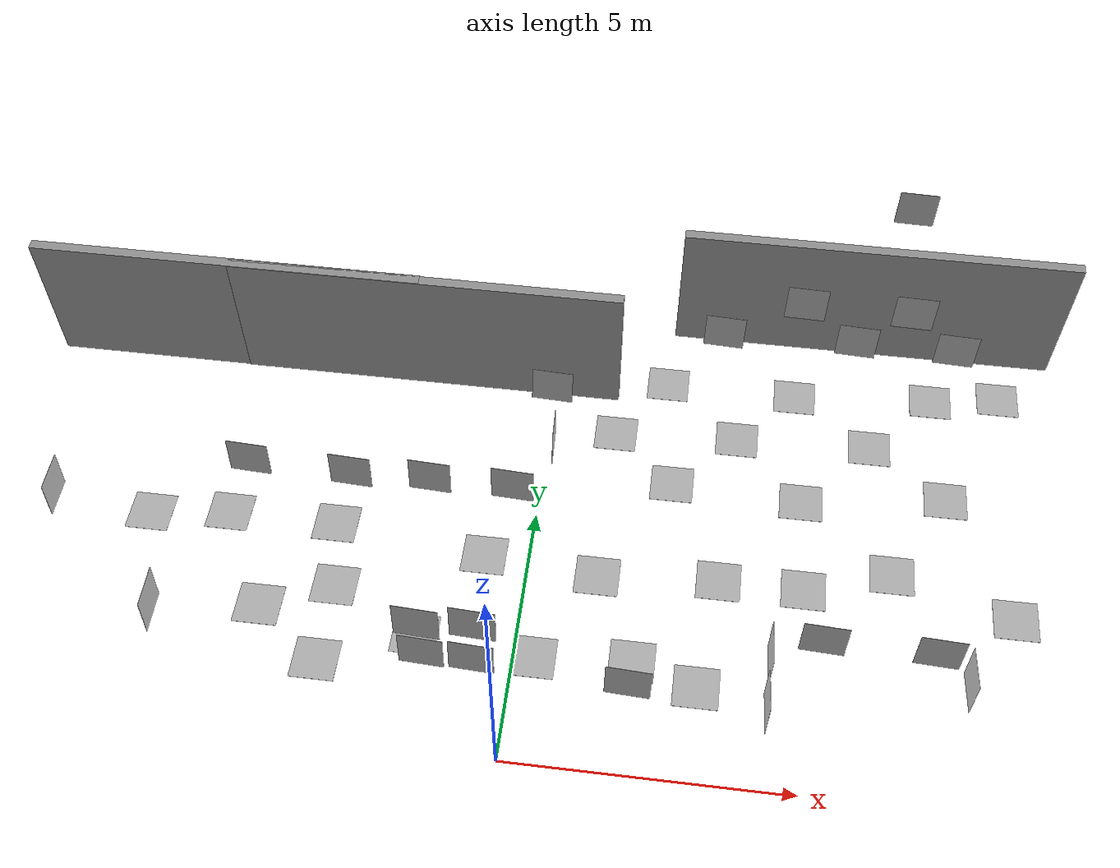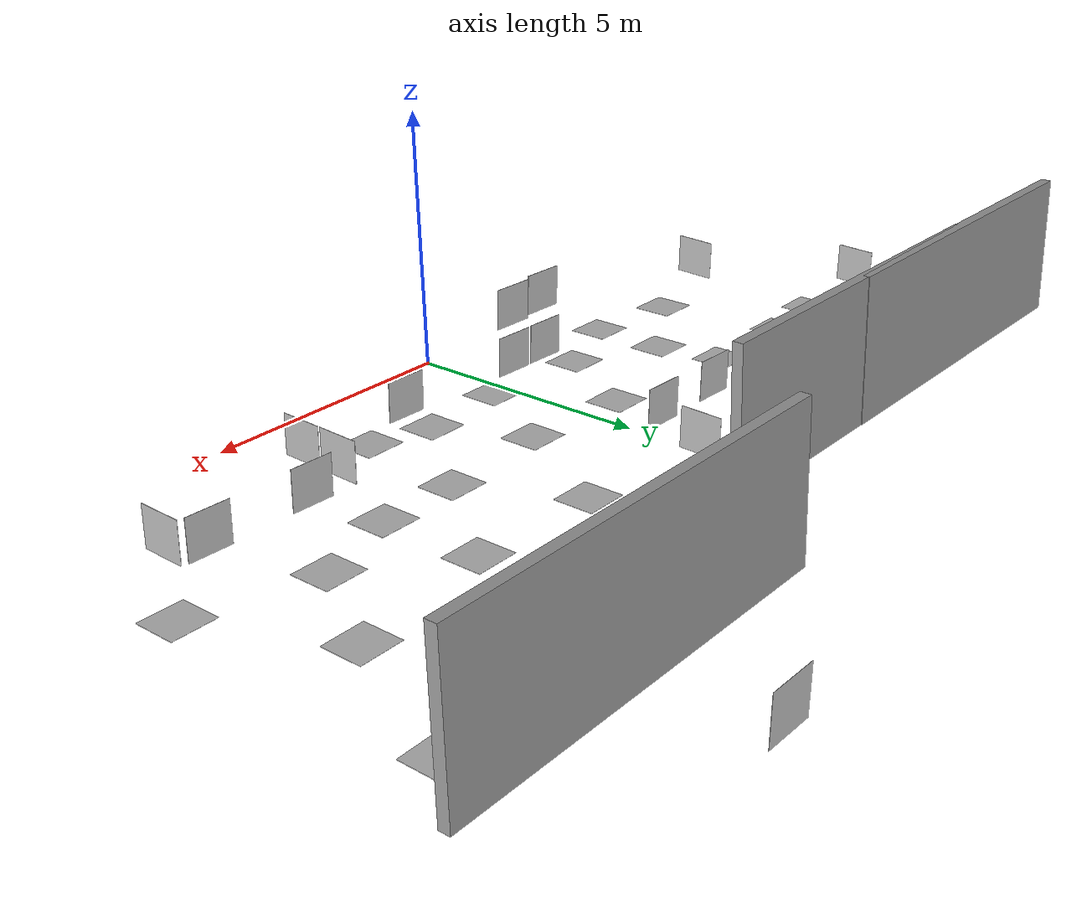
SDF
<sdf version="1.6">
 <world name="factory">
  <model name="grey_wall">
   <static>1</static>
   <link name="link">
    <pose>0 0 1.4 0 -0 0</pose>
    <collision name="collision"><geometry><box><size>7.5 0.2 2.8</size></box></geometry></collision>
    <visual name="visual">
     <cast_shadows>0</cast_shadows>
     <geometry><box><size>7.5 0.2 2.8</size></box></geometry>
     <material>
      <script>
       <uri>model://grey_wall/materials/scripts</uri>
       <uri>model://grey_wall/materials/textures</uri>
       <name>vrc/grey_wall</name>
      </script>
     </material>
    </visual>
   </link>
   <pose>-6.34942 8.1136 0 0 -0 0</pose>
  </model>
  <model name="grey_wall_clone">
   <static>1</static>
   <link name="link">
    <pose>0 0 1.4 0 -0 0</pose>
    <collision name="collision"><geometry><box><size>7.5 0.2 2.8</size></box></geometry></collision>
    <visual name="visual">
     <cast_shadows>0</cast_shadows>
     <geometry><box><size>7.5 0.2 2.8</size></box></geometry>
     <material>
      <script>
       <uri>model://grey_wall/materials/scripts</uri>
       <uri>model://grey_wall/materials/textures</uri>
       <name>vrc/grey_wall</name>
      </script>
     </material>
    </visual>
   </link>
   <pose>-2.50623 8.09985 0 0 -0 0</pose>
  </model>
  <model name="grey_wall_clone_3">
   <static>1</static>
   <link name="link">
    <pose>0 0 1.4 0 -0 0</pose>
    <collision name="collision"><geometry><box><size>7.5 0.2 2.8</size></box></geometry></collision>
    <visual name="visual">
     <cast_shadows>0</cast_shadows>
     <geometry><box><size>7.5 0.2 2.8</size></box></geometry>
     <material>
      <script>
       <uri>model://grey_wall/materials/scripts</uri>
       <uri>model://grey_wall/materials/textures</uri>
       <name>vrc/grey_wall</name>
      </script>
     </material>
    </visual>
   </link>
   <pose>5.99617 9.95603 0 0 -0 0</pose>
  </model>
  <model name="kalibr_tag_clone_clone_clone_clone_clone">
   <static>1</static>
   <link name="link">
    <inertial>
     <mass>0.1</mass>
     <inertia>
      <ixx>0.000166667</ixx>
      <iyy>0.000166667</iyy>
      <izz>0.000166667</izz>
      <ixy>0</ixy>
      <ixz>0</ixz>
      <iyz>0</iyz>
     </inertia>
    </inertial>
    <collision name="collision"><geometry><box><size>0.8 0.8 0.005</size></box></geometry></collision>
    <visual name="visual">
     <geometry><box><size>0.8 0.8 0.005</size></box></geometry>
     <material>
      <script>
       <uri>model://kalibr_tag/materials/scripts</uri>
       <uri>model://kalibr_tag/materials/textures</uri>
       <name>Kalibr_tag/Diffuse</name>
      </script>
     </material>
    </visual>
   </link>
   <pose>-9.00998 4.29013 0.427439 1.58264 0.057467 1.61346</pose>
  </model>
  <model name="kalibr_tag_clone_clone_clone_clone_clone_clone">
   <static>1</static>
   <link name="link">
    <inertial>
     <mass>0.1</mass>
     <inertia>
      <ixx>0.000166667</ixx>
      <iyy>0.000166667</iyy>
      <izz>0.000166667</izz>
      <ixy>0</ixy>
      <ixz>0</ixz>
      <iyz>0</iyz>
     </inertia>
    </inertial>
    <collision name="collision"><geometry><box><size>0.8 0.8 0.005</size></box></geometry></collision>
    <visual name="visual">
     <geometry><box><size>0.8 0.8 0.005</size></box></geometry>
     <material>
      <script>
       <uri>model://kalibr_tag/materials/scripts</uri>
       <uri>model://kalibr_tag/materials/textures</uri>
       <name>Kalibr_tag/Diffuse</name>
      </script>
     </material>
    </visual>
   </link>
   <pose>2.03923 1.50633 0.418062 1.62908 -0.00671 3.09537</pose>
  </model>
  <model name="kalibr_tag_clone_clone_clone_clone_clone_clone_clone">
   <static>1</static>
   <link name="link">
    <inertial>
     <mass>0.1</mass>
     <inertia>
      <ixx>0.000166667</ixx>
      <iyy>0.000166667</iyy>
      <izz>0.000166667</izz>
      <ixy>0</ixy>
      <ixz>0</ixz>
      <iyz>0</iyz>
     </inertia>
    </inertial>
    <collision name="collision"><geometry><box><size>0.8 0.8 0.005</size></box></geometry></collision>
    <visual name="visual">
     <geometry><box><size>0.8 0.8 0.005</size></box></geometry>
     <material>
      <script>
       <uri>model://kalibr_tag/materials/scripts</uri>
       <uri>model://kalibr_tag/materials/textures</uri>
       <name>Kalibr_tag/Diffuse</name>
      </script>
     </material>
    </visual>
   </link>
   <pose>3.2359 9.70204 0.424998 1.62908 -0.00671 3.09537</pose>
  </model>
  <model name="kalibr_tag_clone_clone_clone_clone_clone_clone_clone_clone">
   <static>1</static>
   <link name="link">
    <inertial>
     <mass>0.1</mass>
     <inertia>
      <ixx>0.000166667</ixx>
      <iyy>0.000166667</iyy>
      <izz>0.000166667</izz>
      <ixy>0</ixy>
      <ixz>0</ixz>
      <iyz>0</iyz>
     </inertia>
    </inertial>
    <collision name="collision"><geometry><box><size>0.8 0.8 0.005</size></box></geometry></collision>
    <visual name="visual">
     <geometry><box><size>0.8 0.8 0.005</size></box></geometry>
     <material>
      <script>
       <uri>model://kalibr_tag/materials/scripts</uri>
       <uri>model://kalibr_tag/materials/textures</uri>
       <name>Kalibr_tag/Diffuse</name>
      </script>
     </material>
    </visual>
   </link>
   <pose>7.87476 9.77394 0.424998 1.62908 -0.00671 3.09537</pose>
  </model>
  <model name="kalibr_tag_clone_0_clone_clone">
   <static>1</static>
   <link name="link">
    <inertial>
     <mass>0.1</mass>
     <inertia>
      <ixx>0.000166667</ixx>
      <iyy>0.000166667</iyy>
      <izz>0.000166667</izz>
      <ixy>0</ixy>
      <ixz>0</ixz>
      <iyz>0</iyz>
     </inertia>
    </inertial>
    <collision name="collision"><geometry><box><size>0.8 0.8 0.005</size></box></geometry></collision>
    <visual name="visual">
     <geometry><box><size>0.8 0.8 0.005</size></box></geometry>
     <material>
      <script>
       <uri>model://kalibr_tag/materials/scripts</uri>
       <uri>model://kalibr_tag/materials/textures</uri>
       <name>Kalibr_tag/Diffuse</name>
      </script>
     </material>
    </visual>
   </link>
   <pose>6.59426 4.51864 -0.000701 0 -0 0</pose>
  </model>
  <model name="kalibr_tag_clone_0_clone_clone_clone_2">
   <static>1</static>
   <link name="link">
    <inertial>
     <mass>0.1</mass>
     <inertia>
      <ixx>0.000166667</ixx>
      <iyy>0.000166667</iyy>
      <izz>0.000166667</izz>
      <ixy>0</ixy>
      <ixz>0</ixz>
      <iyz>0</iyz>
     </inertia>
    </inertial>
    <collision name="collision"><geometry><box><size>0.8 0.8 0.005</size></box></geometry></collision>
    <visual name="visual">
     <geometry><box><size>0.8 0.8 0.005</size></box></geometry>
     <material>
      <script>
       <uri>model://kalibr_tag/materials/scripts</uri>
       <uri>model://kalibr_tag/materials/textures</uri>
       <name>Kalibr_tag/Diffuse</name>
      </script>
     </material>
    </visual>
   </link>
   <pose>1.28417 7.15397 -0.000701 0 -0 0</pose>
  </model>
  <model name="kalibr_tag_clone_clone_clone_clone_clone_clone_clone_0">
   <static>1</static>
   <link name="link">
    <inertial>
     <mass>0.1</mass>
     <inertia>
      <ixx>0.000166667</ixx>
      <iyy>0.000166667</iyy>
      <izz>0.000166667</izz>
      <ixy>0</ixy>
      <ixz>0</ixz>
      <iyz>0</iyz>
     </inertia>
    </inertial>
    <collision name="collision"><geometry><box><size>0.8 0.8 0.005</size></box></geometry></collision>
    <visual name="visual">
     <geometry><box><size>0.8 0.8 0.005</size></box></geometry>
     <material>
      <script>
       <uri>model://kalibr_tag/materials/scripts</uri>
       <uri>model://kalibr_tag/materials/textures</uri>
       <name>Kalibr_tag/Diffuse</name>
      </script>
     </material>
    </visual>
   </link>
   <pose>-0.628071 1.72193 1.4248 1.62908 -0.00671 3.09537</pose>
  </model>
  <model name="kalibr_tag_clone_0_clone_clone_clone_7">
   <static>1</static>
   <link name="link">
    <inertial>
     <mass>0.1</mass>
     <inertia>
      <ixx>0.000166667</ixx>
      <iyy>0.000166667</iyy>
      <izz>0.000166667</izz>
      <ixy>0</ixy>
      <ixz>0</ixz>
      <iyz>0</iyz>
     </inertia>
    </inertial>
    <collision name="collision"><geometry><box><size>0.8 0.8 0.005</size></box></geometry></collision>
    <visual name="visual">
     <geometry><box><size>0.8 0.8 0.005</size></box></geometry>
     <material>
      <script>
       <uri>model://kalibr_tag/materials/scripts</uri>
       <uri>model://kalibr_tag/materials/textures</uri>
       <name>Kalibr_tag/Diffuse</name>
      </script>
     </material>
    </visual>
   </link>
   <pose>-0.833082 4.03149 -0.000701 0 -0 0</pose>
  </model>
  <model name="kalibr_tag_clone_clone_clone_clone_clone_0">
   <static>1</static>
   <link name="link">
    <inertial>
     <mass>0.1</mass>
     <inertia>
      <ixx>0.000166667</ixx>
      <iyy>0.000166667</iyy>
      <izz>0.000166667</izz>
      <ixy>0</ixy>
      <ixz>0</ixz>
      <iyz>0</iyz>
     </inertia>
    </inertial>
    <collision name="collision"><geometry><box><size>0.8 0.8 0.005</size></box></geometry></collision>
    <visual name="visual">
     <geometry><box><size>0.8 0.8 0.005</size></box></geometry>
     <material>
      <script>
       <uri>model://kalibr_tag/materials/scripts</uri>
       <uri>model://kalibr_tag/materials/textures</uri>
       <name>Kalibr_tag/Diffuse</name>
      </script>
     </material>
    </visual>
   </link>
   <pose>-6.34134 1.84828 0.855534 1.58264 0.057467 1.61346</pose>
  </model>
  <model name="kalibr_tag_clone_clone_clone_clone_clone_clone_clone_0_clone">
   <static>1</static>
   <link name="link">
    <inertial>
     <mass>0.1</mass>
     <inertia>
      <ixx>0.000166667</ixx>
      <iyy>0.000166667</iyy>
      <izz>0.000166667</izz>
      <ixy>0</ixy>
      <ixz>0</ixz>
      <iyz>0</iyz>
     </inertia>
    </inertial>
    <collision name="collision"><geometry><box><size>0.8 0.8 0.005</size></box></geometry></collision>
    <visual name="visual">
     <geometry><box><size>0.8 0.8 0.005</size></box></geometry>
     <material>
      <script>
       <uri>model://kalibr_tag/materials/scripts</uri>
       <uri>model://kalibr_tag/materials/textures</uri>
       <name>Kalibr_tag/Diffuse</name>
      </script>
     </material>
    </visual>
   </link>
   <pose>-3.57906 5.31317 0.418062 1.62908 -0.00671 3.09537</pose>
  </model>
  <model name="kalibr_tag_clone_0_clone_clone_clone_7_clone">
   <static>1</static>
   <link name="link">
    <inertial>
     <mass>0.1</mass>
     <inertia>
      <ixx>0.000166667</ixx>
      <iyy>0.000166667</iyy>
      <izz>0.000166667</izz>
      <ixy>0</ixy>
      <ixz>0</ixz>
      <iyz>0</iyz>
     </inertia>
    </inertial>
    <collision name="collision"><geometry><box><size>0.8 0.8 0.005</size></box></geometry></collision>
    <visual name="visual">
     <geometry><box><size>0.8 0.8 0.005</size></box></geometry>
     <material>
      <script>
       <uri>model://kalibr_tag/materials/scripts</uri>
       <uri>model://kalibr_tag/materials/textures</uri>
       <name>Kalibr_tag/Diffuse</name>
      </script>
     </material>
    </visual>
   </link>
   <pose>-5.71943 4.39891 -0.000701 0 -0 0</pose>
  </model>
  <model name="kalibr_tag_clone_0_clone_clone_clone_9">
   <static>1</static>
   <link name="link">
    <inertial>
     <mass>0.1</mass>
     <inertia>
      <ixx>0.000166667</ixx>
      <iyy>0.000166667</iyy>
      <izz>0.000166667</izz>
      <ixy>0</ixy>
      <ixz>0</ixz>
      <iyz>0</iyz>
     </inertia>
    </inertial>
    <collision name="collision"><geometry><box><size>0.8 0.8 0.005</size></box></geometry></collision>
    <visual name="visual">
     <geometry><box><size>0.8 0.8 0.005</size></box></geometry>
     <material>
      <script>
       <uri>model://kalibr_tag/materials/scripts</uri>
       <uri>model://kalibr_tag/materials/textures</uri>
       <name>Kalibr_tag/Diffuse</name>
      </script>
     </material>
    </visual>
   </link>
   <pose>6.19182 7.40111 -0.000701 0 -0 0</pose>
  </model>
  <model name="kalibr_tag_clone_0_clone_clone_clone_10">
   <static>1</static>
   <link name="link">
    <inertial>
     <mass>0.1</mass>
     <inertia>
      <ixx>0.000166667</ixx>
      <iyy>0.000166667</iyy>
      <izz>0.000166667</izz>
      <ixy>0</ixy>
      <ixz>0</ixz>
      <iyz>0</iyz>
     </inertia>
    </inertial>
    <collision name="collision"><geometry><box><size>0.8 0.8 0.005</size></box></geometry></collision>
    <visual name="visual">
     <geometry><box><size>0.8 0.8 0.005</size></box></geometry>
     <material>
      <script>
       <uri>model://kalibr_tag/materials/scripts</uri>
       <uri>model://kalibr_tag/materials/textures</uri>
       <name>Kalibr_tag/Diffuse</name>
      </script>
     </material>
    </visual>
   </link>
   <pose>3.63499 7.29562 -0.000701 0 -0 0</pose>
  </model>
  <model name="kalibr_tag_clone_0_clone_clone_clone_12">
   <static>1</static>
   <link name="link">
    <inertial>
     <mass>0.1</mass>
     <inertia>
      <ixx>0.000166667</ixx>
      <iyy>0.000166667</iyy>
      <izz>0.000166667</izz>
      <ixy>0</ixy>
      <ixz>0</ixz>
      <iyz>0</iyz>
     </inertia>
    </inertial>
    <collision name="collision"><geometry><box><size>0.8 0.8 0.005</size></box></geometry></collision>
    <visual name="visual">
     <geometry><box><size>0.8 0.8 0.005</size></box></geometry>
     <material>
      <script>
       <uri>model://kalibr_tag/materials/scripts</uri>
       <uri>model://kalibr_tag/materials/textures</uri>
       <name>Kalibr_tag/Diffuse</name>
      </script>
     </material>
    </visual>
   </link>
   <pose>3.46712 4.00029 -0.000701 0 -0 0</pose>
  </model>
  <model name="kalibr_tag_clone_0_clone_clone_clone_13">
   <static>1</static>
   <link name="link">
    <inertial>
     <mass>0.1</mass>
     <inertia>
      <ixx>0.000166667</ixx>
      <iyy>0.000166667</iyy>
      <izz>0.000166667</izz>
      <ixy>0</ixy>
      <ixz>0</ixz>
      <iyz>0</iyz>
     </inertia>
    </inertial>
    <collision name="collision"><geometry><box><size>0.8 0.8 0.005</size></box></geometry></collision>
    <visual name="visual">
     <geometry><box><size>0.8 0.8 0.005</size></box></geometry>
     <material>
      <script>
       <uri>model://kalibr_tag/materials/scripts</uri>
       <uri>model://kalibr_tag/materials/textures</uri>
       <name>Kalibr_tag/Diffuse</name>
      </script>
     </material>
    </visual>
   </link>
   <pose>-3.43504 1.52199 -0.000701 0 -0 0</pose>
  </model>
  <model name="kalibr_tag_clone_0_clone_clone_clone_14">
   <static>1</static>
   <link name="link">
    <inertial>
     <mass>0.1</mass>
     <inertia>
      <ixx>0.000166667</ixx>
      <iyy>0.000166667</iyy>
      <izz>0.000166667</izz>
      <ixy>0</ixy>
      <ixz>0</ixz>
      <iyz>0</iyz>
     </inertia>
    </inertial>
    <collision name="collision"><geometry><box><size>0.8 0.8 0.005</size></box></geometry></collision>
    <visual name="visual">
     <geometry><box><size>0.8 0.8 0.005</size></box></geometry>
     <material>
      <script>
       <uri>model://kalibr_tag/materials/scripts</uri>
       <uri>model://kalibr_tag/materials/textures</uri>
       <name>Kalibr_tag/Diffuse</name>
      </script>
     </material>
    </visual>
   </link>
   <pose>-3.68352 4.38837 -0.000701 0 -0 0</pose>
  </model>
  <model name="kalibr_tag_clone_clone_clone_clone_clone_clone_clone_0_clone_clone">
   <static>1</static>
   <link name="link">
    <inertial>
     <mass>0.1</mass>
     <inertia>
      <ixx>0.000166667</ixx>
      <iyy>0.000166667</iyy>
      <izz>0.000166667</izz>
      <ixy>0</ixy>
      <ixz>0</ixz>
      <iyz>0</iyz>
     </inertia>
    </inertial>
    <collision name="collision"><geometry><box><size>0.8 0.8 0.005</size></box></geometry></collision>
    <visual name="visual">
     <geometry><box><size>0.8 0.8 0.005</size></box></geometry>
     <material>
      <script>
       <uri>model://kalibr_tag/materials/scripts</uri>
       <uri>model://kalibr_tag/materials/textures</uri>
       <name>Kalibr_tag/Diffuse</name>
      </script>
     </material>
    </visual>
   </link>
   <pose>-0.060311 7.85251 0.418062 1.62908 -0.00671 3.09537</pose>
  </model>
  <model name="kalibr_tag_clone_clone_clone_clone_clone_clone_clone_clone_clone">
   <static>1</static>
   <link name="link">
    <inertial>
     <mass>0.1</mass>
     <inertia>
      <ixx>0.000166667</ixx>
      <iyy>0.000166667</iyy>
      <izz>0.000166667</izz>
      <ixy>0</ixy>
      <ixz>0</ixz>
      <iyz>0</iyz>
     </inertia>
    </inertial>
    <collision name="collision"><geometry><box><size>0.8 0.8 0.005</size></box></geometry></collision>
    <visual name="visual">
     <geometry><box><size>0.8 0.8 0.005</size></box></geometry>
     <material>
      <script>
       <uri>model://kalibr_tag/materials/scripts</uri>
       <uri>model://kalibr_tag/materials/textures</uri>
       <name>Kalibr_tag/Diffuse</name>
      </script>
     </material>
    </visual>
   </link>
   <pose>5.89792 9.77223 0.424998 1.62908 -0.00671 3.09537</pose>
  </model>
  <model name="kalibr_tag_clone_0_clone_clone_clone_clone_1">
   <static>1</static>
   <link name="link">
    <inertial>
     <mass>0.1</mass>
     <inertia>
      <ixx>0.000166667</ixx>
      <iyy>0.000166667</iyy>
      <izz>0.000166667</izz>
      <ixy>0</ixy>
      <ixz>0</ixz>
      <iyz>0</iyz>
     </inertia>
    </inertial>
    <collision name="collision"><geometry><box><size>0.8 0.8 0.005</size></box></geometry></collision>
    <visual name="visual">
     <geometry><box><size>0.8 0.8 0.005</size></box></geometry>
     <material>
      <script>
       <uri>model://kalibr_tag/materials/scripts</uri>
       <uri>model://kalibr_tag/materials/textures</uri>
       <name>Kalibr_tag/Diffuse</name>
      </script>
     </material>
    </visual>
   </link>
   <pose>7.61618 6.32388 -0.000701 0 -0 0</pose>
  </model>
  <model name="kalibr_tag_clone_0_clone_clone_clone_clone_2">
   <static>1</static>
   <link name="link">
    <inertial>
     <mass>0.1</mass>
     <inertia>
      <ixx>0.000166667</ixx>
      <iyy>0.000166667</iyy>
      <izz>0.000166667</izz>
      <ixy>0</ixy>
      <ixz>0</ixz>
      <iyz>0</iyz>
     </inertia>
    </inertial>
    <collision name="collision"><geometry><box><size>0.8 0.8 0.005</size></box></geometry></collision>
    <visual name="visual">
     <geometry><box><size>0.8 0.8 0.005</size></box></geometry>
     <material>
      <script>
       <uri>model://kalibr_tag/materials/scripts</uri>
       <uri>model://kalibr_tag/materials/textures</uri>
       <name>Kalibr_tag/Diffuse</name>
      </script>
     </material>
    </visual>
   </link>
   <pose>4.7198 8.50497 -0.000701 0 -0 0</pose>
  </model>
  <model name="kalibr_tag_clone_0_clone_clone_clone_clone_3">
   <static>1</static>
   <link name="link">
    <inertial>
     <mass>0.1</mass>
     <inertia>
      <ixx>0.000166667</ixx>
      <iyy>0.000166667</iyy>
      <izz>0.000166667</izz>
      <ixy>0</ixy>
      <ixz>0</ixz>
      <iyz>0</iyz>
     </inertia>
    </inertial>
    <collision name="collision"><geometry><box><size>0.8 0.8 0.005</size></box></geometry></collision>
    <visual name="visual">
     <geometry><box><size>0.8 0.8 0.005</size></box></geometry>
     <material>
      <script>
       <uri>model://kalibr_tag/materials/scripts</uri>
       <uri>model://kalibr_tag/materials/textures</uri>
       <name>Kalibr_tag/Diffuse</name>
      </script>
     </material>
    </visual>
   </link>
   <pose>7.39646 8.72597 -0.000701 0 -0 0</pose>
  </model>
  <model name="kalibr_tag_clone_0_clone_clone_clone_clone_4">
   <static>1</static>
   <link name="link">
    <inertial>
     <mass>0.1</mass>
     <inertia>
      <ixx>0.000166667</ixx>
      <iyy>0.000166667</iyy>
      <izz>0.000166667</izz>
      <ixy>0</ixy>
      <ixz>0</ixz>
      <iyz>0</iyz>
     </inertia>
    </inertial>
    <collision name="collision"><geometry><box><size>0.8 0.8 0.005</size></box></geometry></collision>
    <visual name="visual">
     <geometry><box><size>0.8 0.8 0.005</size></box></geometry>
     <material>
      <script>
       <uri>model://kalibr_tag/materials/scripts</uri>
       <uri>model://kalibr_tag/materials/textures</uri>
       <name>Kalibr_tag/Diffuse</name>
      </script>
     </material>
    </visual>
   </link>
   <pose>4.90775 5.94404 -0.000701 0 -0 0</pose>
  </model>
  <model name="kalibr_tag_clone_0_clone_clone_clone_clone_5">
   <static>1</static>
   <link name="link">
    <inertial>
     <mass>0.1</mass>
     <inertia>
      <ixx>0.000166667</ixx>
      <iyy>0.000166667</iyy>
      <izz>0.000166667</izz>
      <ixy>0</ixy>
      <ixz>0</ixz>
      <iyz>0</iyz>
     </inertia>
    </inertial>
    <collision name="collision"><geometry><box><size>0.8 0.8 0.005</size></box></geometry></collision>
    <visual name="visual">
     <geometry><box><size>0.8 0.8 0.005</size></box></geometry>
     <material>
      <script>
       <uri>model://kalibr_tag/materials/scripts</uri>
       <uri>model://kalibr_tag/materials/textures</uri>
       <name>Kalibr_tag/Diffuse</name>
      </script>
     </material>
    </visual>
   </link>
   <pose>2.20416 8.52728 -0.000701 0 -0 0</pose>
  </model>
  <model name="kalibr_tag_clone_0_clone_clone_clone_clone_6">
   <static>1</static>
   <link name="link">
    <inertial>
     <mass>0.1</mass>
     <inertia>
      <ixx>0.000166667</ixx>
      <iyy>0.000166667</iyy>
      <izz>0.000166667</izz>
      <ixy>0</ixy>
      <ixz>0</ixz>
      <iyz>0</iyz>
     </inertia>
    </inertial>
    <collision name="collision"><geometry><box><size>0.8 0.8 0.005</size></box></geometry></collision>
    <visual name="visual">
     <geometry><box><size>0.8 0.8 0.005</size></box></geometry>
     <material>
      <script>
       <uri>model://kalibr_tag/materials/scripts</uri>
       <uri>model://kalibr_tag/materials/textures</uri>
       <name>Kalibr_tag/Diffuse</name>
      </script>
     </material>
    </visual>
   </link>
   <pose>2.46193 6.0714 -0.000701 0 -0 0</pose>
  </model>
  <model name="kalibr_tag_clone_0_clone_clone_clone_clone_13">
   <static>1</static>
   <link name="link">
    <inertial>
     <mass>0.1</mass>
     <inertia>
      <ixx>0.000166667</ixx>
      <iyy>0.000166667</iyy>
      <izz>0.000166667</izz>
      <ixy>0</ixy>
      <ixz>0</ixz>
      <iyz>0</iyz>
     </inertia>
    </inertial>
    <collision name="collision"><geometry><box><size>0.8 0.8 0.005</size></box></geometry></collision>
    <visual name="visual">
     <geometry><box><size>0.8 0.8 0.005</size></box></geometry>
     <material>
      <script>
       <uri>model://kalibr_tag/materials/scripts</uri>
       <uri>model://kalibr_tag/materials/textures</uri>
       <name>Kalibr_tag/Diffuse</name>
      </script>
     </material>
    </visual>
   </link>
   <pose>1.27116 3.83679 -0.000701 0 -0 0</pose>
  </model>
  <model name="kalibr_tag_clone_0_clone_clone_clone_clone_14">
   <static>1</static>
   <link name="link">
    <inertial>
     <mass>0.1</mass>
     <inertia>
      <ixx>0.000166667</ixx>
      <iyy>0.000166667</iyy>
      <izz>0.000166667</izz>
      <ixy>0</ixy>
      <ixz>0</ixz>
      <iyz>0</iyz>
     </inertia>
    </inertial>
    <collision name="collision"><geometry><box><size>0.8 0.8 0.005</size></box></geometry></collision>
    <visual name="visual">
     <geometry><box><size>0.8 0.8 0.005</size></box></geometry>
     <material>
      <script>
       <uri>model://kalibr_tag/materials/scripts</uri>
       <uri>model://kalibr_tag/materials/textures</uri>
       <name>Kalibr_tag/Diffuse</name>
      </script>
     </material>
    </visual>
   </link>
   <pose>-4.58864 2.29815 0.329524 0 -0 0</pose>
  </model>
  <model name="kalibr_tag_clone_0_clone_clone_clone_14_clone">
   <static>1</static>
   <link name="link">
    <inertial>
     <mass>0.1</mass>
     <inertia>
      <ixx>0.000166667</ixx>
      <iyy>0.000166667</iyy>
      <izz>0.000166667</izz>
      <ixy>0</ixy>
      <ixz>0</ixz>
      <iyz>0</iyz>
     </inertia>
    </inertial>
    <collision name="collision"><geometry><box><size>0.8 0.8 0.005</size></box></geometry></collision>
    <visual name="visual">
     <geometry><box><size>0.8 0.8 0.005</size></box></geometry>
     <material>
      <script>
       <uri>model://kalibr_tag/materials/scripts</uri>
       <uri>model://kalibr_tag/materials/textures</uri>
       <name>Kalibr_tag/Diffuse</name>
      </script>
     </material>
    </visual>
   </link>
   <pose>-3.42286 3.05555 -0.000701 0 -0 0</pose>
  </model>
  <model name="kalibr_tag_clone_0_clone_clone_clone_14_clone_0">
   <static>1</static>
   <link name="link">
    <inertial>
     <mass>0.1</mass>
     <inertia>
      <ixx>0.000166667</ixx>
      <iyy>0.000166667</iyy>
      <izz>0.000166667</izz>
      <ixy>0</ixy>
      <ixz>0</ixz>
      <iyz>0</iyz>
     </inertia>
    </inertial>
    <collision name="collision"><geometry><box><size>0.8 0.8 0.005</size></box></geometry></collision>
    <visual name="visual">
     <geometry><box><size>0.8 0.8 0.005</size></box></geometry>
     <material>
      <script>
       <uri>model://kalibr_tag/materials/scripts</uri>
       <uri>model://kalibr_tag/materials/textures</uri>
       <name>Kalibr_tag/Diffuse</name>
      </script>
     </material>
    </visual>
   </link>
   <pose>0.334439 2.02488 0.008694 0 -0 0</pose>
  </model>
  <model name="kalibr_tag_clone_0_clone_clone_clone_14_clone_0_clone">
   <static>1</static>
   <link name="link">
    <inertial>
     <mass>0.1</mass>
     <inertia>
      <ixx>0.000166667</ixx>
      <iyy>0.000166667</iyy>
      <izz>0.000166667</izz>
      <ixy>0</ixy>
      <ixz>0</ixz>
      <iyz>0</iyz>
     </inertia>
    </inertial>
    <collision name="collision"><geometry><box><size>0.8 0.8 0.005</size></box></geometry></collision>
    <visual name="visual">
     <geometry><box><size>0.8 0.8 0.005</size></box></geometry>
     <material>
      <script>
       <uri>model://kalibr_tag/materials/scripts</uri>
       <uri>model://kalibr_tag/materials/textures</uri>
       <name>Kalibr_tag/Diffuse</name>
      </script>
     </material>
    </visual>
   </link>
   <pose>-1.79445 2.22121 0.008694 0 -0 0</pose>
  </model>
  <model name="kalibr_tag_clone_0_clone_clone_clone_14_clone_0_clone_0">
   <static>1</static>
   <link name="link">
    <inertial>
     <mass>0.1</mass>
     <inertia>
      <ixx>0.000166667</ixx>
      <iyy>0.000166667</iyy>
      <izz>0.000166667</izz>
      <ixy>0</ixy>
      <ixz>0</ixz>
      <iyz>0</iyz>
     </inertia>
    </inertial>
    <collision name="collision"><geometry><box><size>0.8 0.8 0.005</size></box></geometry></collision>
    <visual name="visual">
     <geometry><box><size>0.8 0.8 0.005</size></box></geometry>
     <material>
      <script>
       <uri>model://kalibr_tag/materials/scripts</uri>
       <uri>model://kalibr_tag/materials/textures</uri>
       <name>Kalibr_tag/Diffuse</name>
      </script>
     </material>
    </visual>
   </link>
   <pose>2.06238 2.15303 0.008694 0 -0 0</pose>
  </model>
  <model name="kalibr_tag_clone_0_clone_clone_clone_7_clone_0">
   <static>1</static>
   <link name="link">
    <inertial>
     <mass>0.1</mass>
     <inertia>
      <ixx>0.000166667</ixx>
      <iyy>0.000166667</iyy>
      <izz>0.000166667</izz>
      <ixy>0</ixy>
      <ixz>0</ixz>
      <iyz>0</iyz>
     </inertia>
    </inertial>
    <collision name="collision"><geometry><box><size>0.8 0.8 0.005</size></box></geometry></collision>
    <visual name="visual">
     <geometry><box><size>0.8 0.8 0.005</size></box></geometry>
     <material>
      <script>
       <uri>model://kalibr_tag/materials/scripts</uri>
       <uri>model://kalibr_tag/materials/textures</uri>
       <name>Kalibr_tag/Diffuse</name>
      </script>
     </material>
    </visual>
   </link>
   <pose>3.20838 1.78989 -0.000701 0 -0 0</pose>
  </model>
  <model name="kalibr_tag_clone_0_clone_clone_clone_7_clone_1">
   <static>1</static>
   <link name="link">
    <inertial>
     <mass>0.1</mass>
     <inertia>
      <ixx>0.000166667</ixx>
      <iyy>0.000166667</iyy>
      <izz>0.000166667</izz>
      <ixy>0</ixy>
      <ixz>0</ixz>
      <iyz>0</iyz>
     </inertia>
    </inertial>
    <collision name="collision"><geometry><box><size>0.8 0.8 0.005</size></box></geometry></collision>
    <visual name="visual">
     <geometry><box><size>0.8 0.8 0.005</size></box></geometry>
     <material>
      <script>
       <uri>model://kalibr_tag/materials/scripts</uri>
       <uri>model://kalibr_tag/materials/textures</uri>
       <name>Kalibr_tag/Diffuse</name>
      </script>
     </material>
    </visual>
   </link>
   <pose>5 4 -0.000701 0 -0 0</pose>
  </model>
  <model name="kalibr_tag_clone_0_clone_clone_clone_7_clone_2">
   <static>1</static>
   <link name="link">
    <inertial>
     <mass>0.1</mass>
     <inertia>
      <ixx>0.000166667</ixx>
      <iyy>0.000166667</iyy>
      <izz>0.000166667</izz>
      <ixy>0</ixy>
      <ixz>0</ixz>
      <iyz>0</iyz>
     </inertia>
    </inertial>
    <collision name="collision"><geometry><box><size>0.8 0.8 0.005</size></box></geometry></collision>
    <visual name="visual">
     <geometry><box><size>0.8 0.8 0.005</size></box></geometry>
     <material>
      <script>
       <uri>model://kalibr_tag/materials/scripts</uri>
       <uri>model://kalibr_tag/materials/textures</uri>
       <name>Kalibr_tag/Diffuse</name>
      </script>
     </material>
    </visual>
   </link>
   <pose>8.77237 3.83458 -0.000701 0 -0 0</pose>
  </model>
  <model name="kalibr_tag_clone_clone_clone_clone_clone_1_clone_clone_1_clone">
   <static>1</static>
   <link name="link">
    <inertial>
     <mass>0.1</mass>
     <inertia>
      <ixx>0.000166667</ixx>
      <iyy>0.000166667</iyy>
      <izz>0.000166667</izz>
      <ixy>0</ixy>
      <ixz>0</ixz>
      <iyz>0</iyz>
     </inertia>
    </inertial>
    <collision name="collision"><geometry><box><size>0.8 0.8 0.005</size></box></geometry></collision>
    <visual name="visual">
     <geometry><box><size>0.8 0.8 0.005</size></box></geometry>
     <material>
      <script>
       <uri>model://kalibr_tag/materials/scripts</uri>
       <uri>model://kalibr_tag/materials/textures</uri>
       <name>Kalibr_tag/Diffuse</name>
      </script>
     </material>
    </visual>
   </link>
   <pose>7.83092 2.27509 0.42669 1.58264 0.057467 1.61346</pose>
  </model>
  <model name="kalibr_tag_clone_clone_clone_clone_clone_1_clone_clone_1_clone_0">
   <static>1</static>
   <link name="link">
    <inertial>
     <mass>0.1</mass>
     <inertia>
      <ixx>0.000166667</ixx>
      <iyy>0.000166667</iyy>
      <izz>0.000166667</izz>
      <ixy>0</ixy>
      <ixz>0</ixz>
      <iyz>0</iyz>
     </inertia>
    </inertial>
    <collision name="collision"><geometry><box><size>0.8 0.8 0.005</size></box></geometry></collision>
    <visual name="visual">
     <geometry><box><size>0.8 0.8 0.005</size></box></geometry>
     <material>
      <script>
       <uri>model://kalibr_tag/materials/scripts</uri>
       <uri>model://kalibr_tag/materials/textures</uri>
       <name>Kalibr_tag/Diffuse</name>
      </script>
     </material>
    </visual>
   </link>
   <pose>0.126262 6.62218 0.42669 1.58264 0.057467 1.61346</pose>
  </model>
  <model name="kalibr_tag_clone_clone_clone_clone_clone_clone_clone_0_clone_clone_0">
   <static>1</static>
   <link name="link">
    <inertial>
     <mass>0.1</mass>
     <inertia>
      <ixx>0.000166667</ixx>
      <iyy>0.000166667</iyy>
      <izz>0.000166667</izz>
      <ixy>0</ixy>
      <ixz>0</ixz>
      <iyz>0</iyz>
     </inertia>
    </inertial>
    <collision name="collision"><geometry><box><size>0.8 0.8 0.005</size></box></geometry></collision>
    <visual name="visual">
     <geometry><box><size>0.8 0.8 0.005</size></box></geometry>
     <material>
      <script>
       <uri>model://kalibr_tag/materials/scripts</uri>
       <uri>model://kalibr_tag/materials/textures</uri>
       <name>Kalibr_tag/Diffuse</name>
      </script>
     </material>
    </visual>
   </link>
   <pose>-2.07099 5.36761 0.418062 1.62908 -0.00671 3.09537</pose>
  </model>
  <model name="kalibr_tag_clone_clone_clone_clone_clone_clone_clone_0_clone_clone_1">
   <static>1</static>
   <link name="link">
    <inertial>
     <mass>0.1</mass>
     <inertia>
      <ixx>0.000166667</ixx>
      <iyy>0.000166667</iyy>
      <izz>0.000166667</izz>
      <ixy>0</ixy>
      <ixz>0</ixz>
      <iyz>0</iyz>
     </inertia>
    </inertial>
    <collision name="collision"><geometry><box><size>0.8 0.8 0.005</size></box></geometry></collision>
    <visual name="visual">
     <geometry><box><size>0.8 0.8 0.005</size></box></geometry>
     <material>
      <script>
       <uri>model://kalibr_tag/materials/scripts</uri>
       <uri>model://kalibr_tag/materials/textures</uri>
       <name>Kalibr_tag/Diffuse</name>
      </script>
     </material>
    </visual>
   </link>
   <pose>-0.501446 5.36883 0.418062 1.62908 -0.00671 3.09537</pose>
  </model>
  <model name="kalibr_tag_clone_clone_clone_clone_clone_clone_clone_0_clone_clone_2">
   <static>1</static>
   <link name="link">
    <inertial>
     <mass>0.1</mass>
     <inertia>
      <ixx>0.000166667</ixx>
      <iyy>0.000166667</iyy>
      <izz>0.000166667</izz>
      <ixy>0</ixy>
      <ixz>0</ixz>
      <iyz>0</iyz>
     </inertia>
    </inertial>
    <collision name="collision"><geometry><box><size>0.8 0.8 0.005</size></box></geometry></collision>
    <visual name="visual">
     <geometry><box><size>0.8 0.8 0.005</size></box></geometry>
     <material>
      <script>
       <uri>model://kalibr_tag/materials/scripts</uri>
       <uri>model://kalibr_tag/materials/textures</uri>
       <name>Kalibr_tag/Diffuse</name>
      </script>
     </material>
    </visual>
   </link>
   <pose>-5.55215 5.3764 0.418062 1.62908 -0.00671 3.09537</pose>
  </model>
  <model name="kalibr_tag_clone_0_clone_clone_clone_7_clone_clone">
   <static>1</static>
   <link name="link">
    <inertial>
     <mass>0.1</mass>
     <inertia>
      <ixx>0.000166667</ixx>
      <iyy>0.000166667</iyy>
      <izz>0.000166667</izz>
      <ixy>0</ixy>
      <ixz>0</ixz>
      <iyz>0</iyz>
     </inertia>
    </inertial>
    <collision name="collision"><geometry><box><size>0.8 0.8 0.005</size></box></geometry></collision>
    <visual name="visual">
     <geometry><box><size>0.8 0.8 0.005</size></box></geometry>
     <material>
      <script>
       <uri>model://kalibr_tag/materials/scripts</uri>
       <uri>model://kalibr_tag/materials/textures</uri>
       <name>Kalibr_tag/Diffuse</name>
      </script>
     </material>
    </visual>
   </link>
   <pose>-7.18982 4.21215 -0.000701 0 -0 0</pose>
  </model>
  <model name="kalibr_tag_clone_clone_clone_clone_clone_clone_clone_0_clone_0">
   <static>1</static>
   <link name="link">
    <inertial>
     <mass>0.1</mass>
     <inertia>
      <ixx>0.000166667</ixx>
      <iyy>0.000166667</iyy>
      <izz>0.000166667</izz>
      <ixy>0</ixy>
      <ixz>0</ixz>
      <iyz>0</iyz>
     </inertia>
    </inertial>
    <collision name="collision"><geometry><box><size>0.8 0.8 0.005</size></box></geometry></collision>
    <visual name="visual">
     <geometry><box><size>0.8 0.8 0.005</size></box></geometry>
     <material>
      <script>
       <uri>model://kalibr_tag/materials/scripts</uri>
       <uri>model://kalibr_tag/materials/textures</uri>
       <name>Kalibr_tag/Diffuse</name>
      </script>
     </material>
    </visual>
   </link>
   <pose>-1.56734 1.66735 0.418062 1.62908 -0.00671 3.09537</pose>
  </model>
  <model name="kalibr_tag_clone_clone_clone_clone_clone_1_clone_clone_0_clone">
   <static>1</static>
   <link name="link">
    <inertial>
     <mass>0.1</mass>
     <inertia>
      <ixx>0.000166667</ixx>
      <iyy>0.000166667</iyy>
      <izz>0.000166667</izz>
      <ixy>0</ixy>
      <ixz>0</ixz>
      <iyz>0</iyz>
     </inertia>
    </inertial>
    <collision name="collision"><geometry><box><size>0.8 0.8 0.005</size></box></geometry></collision>
    <visual name="visual">
     <geometry><box><size>0.8 0.8 0.005</size></box></geometry>
     <material>
      <script>
       <uri>model://kalibr_tag/materials/scripts</uri>
       <uri>model://kalibr_tag/materials/textures</uri>
       <name>Kalibr_tag/Diffuse</name>
      </script>
     </material>
    </visual>
   </link>
   <pose>4.42834 2.3652 0.42669 1.58264 0.057467 1.61346</pose>
  </model>
  <model name="kalibr_tag_clone_clone_clone_clone_clone_1_clone_clone_0_clone_clone">
   <static>1</static>
   <link name="link">
    <inertial>
     <mass>0.1</mass>
     <inertia>
      <ixx>0.000166667</ixx>
      <iyy>0.000166667</iyy>
      <izz>0.000166667</izz>
      <ixy>0</ixy>
      <ixz>0</ixz>
      <iyz>0</iyz>
     </inertia>
    </inertial>
    <collision name="collision"><geometry><box><size>0.8 0.8 0.005</size></box></geometry></collision>
    <visual name="visual">
     <geometry><box><size>0.8 0.8 0.005</size></box></geometry>
     <material>
      <script>
       <uri>model://kalibr_tag/materials/scripts</uri>
       <uri>model://kalibr_tag/materials/textures</uri>
       <name>Kalibr_tag/Diffuse</name>
      </script>
     </material>
    </visual>
   </link>
   <pose>4.40079 1.44569 0.42669 1.58264 0.057467 1.61346</pose>
  </model>
  <model name="kalibr_tag_clone_clone_clone_clone_clone_clone_clone_0_clone_clone_5_clone_1_clone">
   <static>1</static>
   <link name="link">
    <inertial>
     <mass>0.1</mass>
     <inertia>
      <ixx>0.000166667</ixx>
      <iyy>0.000166667</iyy>
      <izz>0.000166667</izz>
      <ixy>0</ixy>
      <ixz>0</ixz>
      <iyz>0</iyz>
     </inertia>
    </inertial>
    <collision name="collision"><geometry><box><size>0.8 0.8 0.005</size></box></geometry></collision>
    <visual name="visual">
     <geometry><box><size>0.8 0.8 0.005</size></box></geometry>
     <material>
      <script>
       <uri>model://kalibr_tag/materials/scripts</uri>
       <uri>model://kalibr_tag/materials/textures</uri>
       <name>Kalibr_tag/Diffuse</name>
      </script>
     </material>
    </visual>
   </link>
   <pose>7.32456 2.7473 0.418062 1.62908 -0.00671 3.09537</pose>
  </model>
  <model name="kalibr_tag_clone_clone_clone_clone_clone_clone_clone_0_clone_clone_5_clone_1_clone_0">
   <static>1</static>
   <link name="link">
    <inertial>
     <mass>0.1</mass>
     <inertia>
      <ixx>0.000166667</ixx>
      <iyy>0.000166667</iyy>
      <izz>0.000166667</izz>
      <ixy>0</ixy>
      <ixz>0</ixz>
      <iyz>0</iyz>
     </inertia>
    </inertial>
    <collision name="collision"><geometry><box><size>0.8 0.8 0.005</size></box></geometry></collision>
    <visual name="visual">
     <geometry><box><size>0.8 0.8 0.005</size></box></geometry>
     <material>
      <script>
       <uri>model://kalibr_tag/materials/scripts</uri>
       <uri>model://kalibr_tag/materials/textures</uri>
       <name>Kalibr_tag/Diffuse</name>
      </script>
     </material>
    </visual>
   </link>
   <pose>5.33742 2.76869 0.418062 1.62908 -0.00671 3.09537</pose>
  </model>
  <model name="kalibr_tag_clone_clone_clone_clone_clone_clone_clone_0_clone_0_clone">
   <static>1</static>
   <link name="link">
    <inertial>
     <mass>0.1</mass>
     <inertia>
      <ixx>0.000166667</ixx>
      <iyy>0.000166667</iyy>
      <izz>0.000166667</izz>
      <ixy>0</ixy>
      <ixz>0</ixz>
      <iyz>0</iyz>
     </inertia>
    </inertial>
    <collision name="collision"><geometry><box><size>0.8 0.8 0.005</size></box></geometry></collision>
    <visual name="visual">
     <geometry><box><size>0.8 0.8 0.005</size></box></geometry>
     <material>
      <script>
       <uri>model://kalibr_tag/materials/scripts</uri>
       <uri>model://kalibr_tag/materials/textures</uri>
       <name>Kalibr_tag/Diffuse</name>
      </script>
     </material>
    </visual>
   </link>
   <pose>-0.684108 1.65079 0.418062 1.62908 -0.00671 3.09537</pose>
  </model>
  <model name="kalibr_tag_clone_clone_clone_clone_clone_clone_clone_0_clone_1">
   <static>1</static>
   <link name="link">
    <inertial>
     <mass>0.1</mass>
     <inertia>
      <ixx>0.000166667</ixx>
      <iyy>0.000166667</iyy>
      <izz>0.000166667</izz>
      <ixy>0</ixy>
      <ixz>0</ixz>
      <iyz>0</iyz>
     </inertia>
    </inertial>
    <collision name="collision"><geometry><box><size>0.8 0.8 0.005</size></box></geometry></collision>
    <visual name="visual">
     <geometry><box><size>0.8 0.8 0.005</size></box></geometry>
     <material>
      <script>
       <uri>model://kalibr_tag/materials/scripts</uri>
       <uri>model://kalibr_tag/materials/textures</uri>
       <name>Kalibr_tag/Diffuse</name>
      </script>
     </material>
    </visual>
   </link>
   <pose>-1.57445 1.63867 1.4248 1.62908 -0.00671 3.09537</pose>
  </model>
  <model name="kalibr_tag_clone_clone_clone_clone_clone_clone_clone_clone_clone_0_clone_1">
   <static>1</static>
   <link name="link">
    <inertial>
     <mass>0.1</mass>
     <inertia>
      <ixx>0.000166667</ixx>
      <iyy>0.000166667</iyy>
      <izz>0.000166667</izz>
      <ixy>0</ixy>
      <ixz>0</ixz>
      <iyz>0</iyz>
     </inertia>
    </inertial>
    <collision name="collision"><geometry><box><size>0.8 0.8 0.005</size></box></geometry></collision>
    <visual name="visual">
     <geometry><box><size>0.8 0.8 0.005</size></box></geometry>
     <material>
      <script>
       <uri>model://kalibr_tag/materials/scripts</uri>
       <uri>model://kalibr_tag/materials/textures</uri>
       <name>Kalibr_tag/Diffuse</name>
      </script>
     </material>
    </visual>
   </link>
   <pose>6.86519 9.79159 1.36333 1.62055 -0.00802 3.11786</pose>
  </model>
  <model name="kalibr_tag_clone_0_clone_clone_clone_clone_3_clone">
   <static>1</static>
   <link name="link">
    <inertial>
     <mass>0.1</mass>
     <inertia>
      <ixx>0.000166667</ixx>
      <iyy>0.000166667</iyy>
      <izz>0.000166667</izz>
      <ixy>0</ixy>
      <ixz>0</ixz>
      <iyz>0</iyz>
     </inertia>
    </inertial>
    <collision name="collision"><geometry><box><size>0.8 0.8 0.005</size></box></geometry></collision>
    <visual name="visual">
     <geometry><box><size>0.8 0.8 0.005</size></box></geometry>
     <material>
      <script>
       <uri>model://kalibr_tag/materials/scripts</uri>
       <uri>model://kalibr_tag/materials/textures</uri>
       <name>Kalibr_tag/Diffuse</name>
      </script>
     </material>
    </visual>
   </link>
   <pose>8.72465 8.94193 -0.000701 0 -0 0</pose>
  </model>
  <model name="kalibr_tag_clone_clone_clone_clone_clone_clone_clone_clone_clone_0_clone_1_clone">
   <static>1</static>
   <link name="link">
    <inertial>
     <mass>0.1</mass>
     <inertia>
      <ixx>0.000166667</ixx>
      <iyy>0.000166667</iyy>
      <izz>0.000166667</izz>
      <ixy>0</ixy>
      <ixz>0</ixz>
      <iyz>0</iyz>
     </inertia>
    </inertial>
    <collision name="collision"><geometry><box><size>0.8 0.8 0.005</size></box></geometry></collision>
    <visual name="visual">
     <geometry><box><size>0.8 0.8 0.005</size></box></geometry>
     <material>
      <script>
       <uri>model://kalibr_tag/materials/scripts</uri>
       <uri>model://kalibr_tag/materials/textures</uri>
       <name>Kalibr_tag/Diffuse</name>
      </script>
     </material>
    </visual>
   </link>
   <pose>6.97767 12.7701 1.36333 1.62055 -0.00802 3.11786</pose>
  </model>
  <model name="kalibr_tag_clone_clone_clone_clone_clone_clone_clone_clone_clone_0_clone_1_clone_0">
   <static>1</static>
   <link name="link">
    <inertial>
     <mass>0.1</mass>
     <inertia>
      <ixx>0.000166667</ixx>
      <iyy>0.000166667</iyy>
      <izz>0.000166667</izz>
      <ixy>0</ixy>
      <ixz>0</ixz>
      <iyz>0</iyz>
     </inertia>
    </inertial>
    <collision name="collision"><geometry><box><size>0.8 0.8 0.005</size></box></geometry></collision>
    <visual name="visual">
     <geometry><box><size>0.8 0.8 0.005</size></box></geometry>
     <material>
      <script>
       <uri>model://kalibr_tag/materials/scripts</uri>
       <uri>model://kalibr_tag/materials/textures</uri>
       <name>Kalibr_tag/Diffuse</name>
      </script>
     </material>
    </visual>
   </link>
   <pose>4.75741 9.77773 1.36333 1.62055 -0.00802 3.11786</pose>
  </model>
 </world>
</sdf>
